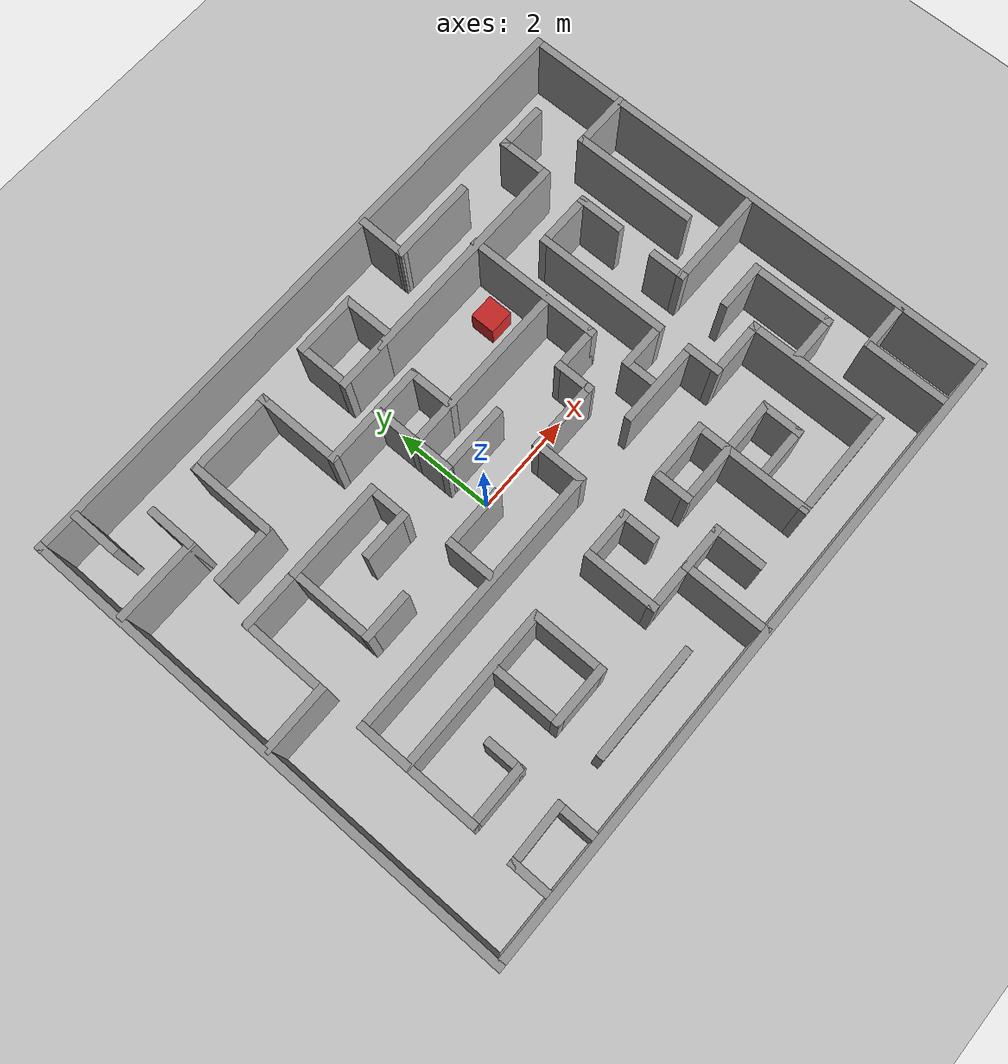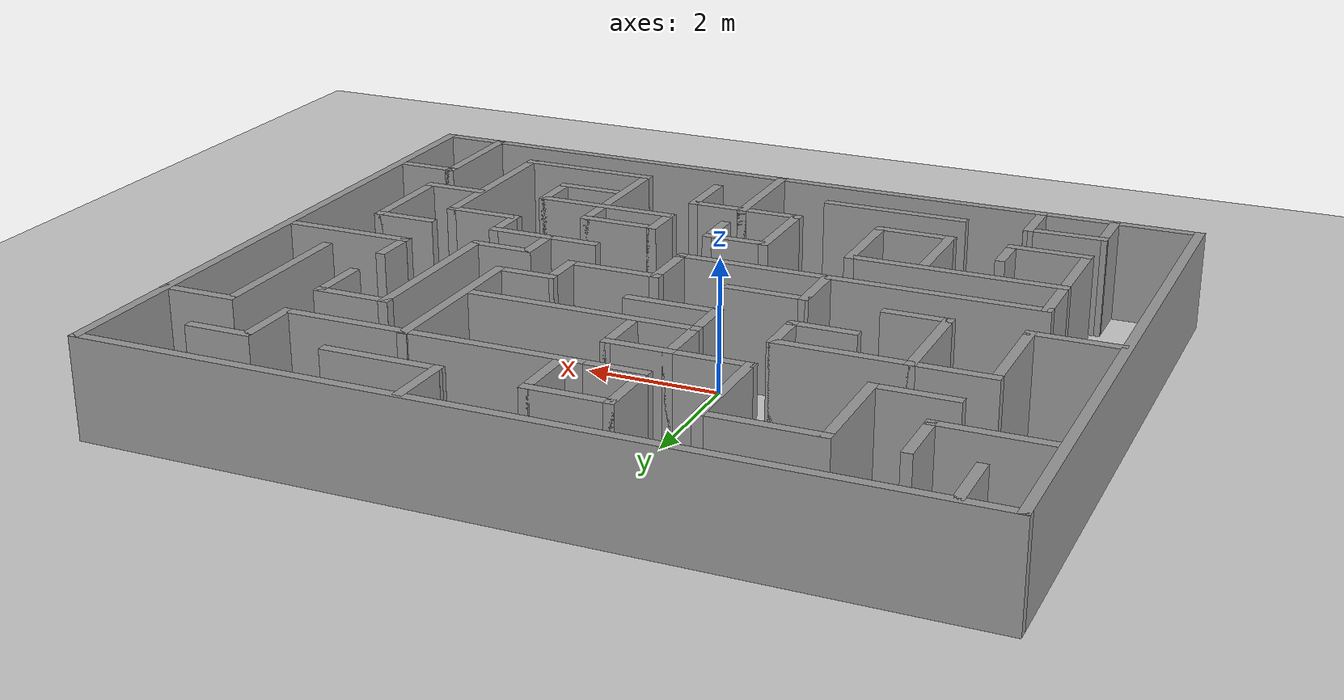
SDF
<sdf version="1.6">
 <world name="default">
  <light name="sun" type="directional">
   <pose>0 0 10 0 -0 0</pose>
   <diffuse>0.8 0.8 0.8 1</diffuse>
   <specular>0.1 0.1 0.1 1</specular>
   <attenuation>
    <range>1000</range>
    <constant>0.9</constant>
    <linear>0.01</linear>
    <quadratic>0.001</quadratic>
   </attenuation>
   <direction>-0.5 0.5 -1</direction>
  </light>
  <model name="ground_plane">
   <static>1</static>
   <link name="link">
    <collision name="collision">
     <geometry><plane><normal>0 0 1</normal><size>100 100</size></plane></geometry>
     <surface><friction><ode><mu>100</mu><mu2>50</mu2></ode></friction></surface>
    </collision>
    <visual name="visual">
     <cast_shadows>0</cast_shadows>
     <geometry><plane><normal>0 0 1</normal><size>100 100</size></plane></geometry>
     <material>
      <script><uri>file://media/materials/scripts/gazebo.material</uri><name>Gazebo/Grey</name></script>
     </material>
    </visual>
   </link>
  </model>
  <gravity>0 0 -9.8</gravity>
  <magnetic_field>6e-06 2.3e-05 -4.2e-05</magnetic_field>
  <atmosphere type="adiabatic"/>
  <physics name="default_physics" default="0" type="ode">
   <max_step_size>0.001</max_step_size>
   <real_time_factor>1</real_time_factor>
   <real_time_update_rate>1000</real_time_update_rate>
  </physics>
  <scene><ambient>0.4 0.4 0.4 1</ambient><background>0.7 0.7 0.7 1</background><shadows>1</shadows></scene>
  <spherical_coordinates>
   <surface_model>EARTH_WGS84</surface_model>
   <latitude_deg>0</latitude_deg>
   <longitude_deg>0</longitude_deg>
   <elevation>0</elevation>
   <heading_deg>0</heading_deg>
  </spherical_coordinates>
  <model name="lab">
   <pose>0.761191 -0.150374 0 0 -0 0</pose>
   <link name="Wall_101">
    <collision name="Wall_101_Collision">
     <geometry><box><size>2 0.15 1.5</size></box></geometry>
     <pose>0 0 0.75 0 -0 0</pose>
    </collision>
    <visual name="Wall_101_Visual">
     <pose>0 0 0.75 0 -0 0</pose>
     <geometry><box><size>2 0.15 1.5</size></box></geometry>
     <material>
      <script><uri>file://media/materials/scripts/gazebo.material</uri><name>Gazebo/Grey</name></script>
      <ambient>1 1 1 1</ambient>
     </material>
    </visual>
    <pose>5.219 -0.018 0 0 -0 0</pose>
   </link>
   <link name="Wall_104">
    <collision name="Wall_104_Collision">
     <geometry><box><size>0.757009 0.15 1.5</size></box></geometry>
     <pose>0 0 0.75 0 -0 0</pose>
    </collision>
    <visual name="Wall_104_Visual">
     <pose>0 0 0.75 0 -0 0</pose>
     <geometry><box><size>0.757009 0.15 1.5</size></box></geometry>
     <material>
      <script><uri>file://media/materials/scripts/gazebo.material</uri><name>Gazebo/Grey</name></script>
      <ambient>1 1 1 1</ambient>
     </material>
    </visual>
    <pose>4.294 0.2855 0 0 -0 1.5708</pose>
   </link>
   <link name="Wall_107">
    <collision name="Wall_107_Collision">
     <geometry><box><size>0.75 0.15 1.5</size></box></geometry>
     <pose>0 0 0.75 0 -0 0</pose>
    </collision>
    <visual name="Wall_107_Visual">
     <pose>0 0 0.75 0 -0 0</pose>
     <geometry><box><size>0.75 0.15 1.5</size></box></geometry>
     <material>
      <script><uri>file://media/materials/scripts/gazebo.material</uri><name>Gazebo/Grey</name></script>
      <ambient>1 1 1 1</ambient>
     </material>
    </visual>
    <pose>2.421 -0.617 0 0 -0 1.5708</pose>
   </link>
   <link name="Wall_108">
    <collision name="Wall_108_Collision">
     <geometry><box><size>1 0.15 1.5</size></box></geometry>
     <pose>0 0 0.75 0 -0 0</pose>
    </collision>
    <visual name="Wall_108_Visual">
     <pose>0 0 0.75 0 -0 0</pose>
     <geometry><box><size>1 0.15 1.5</size></box></geometry>
     <material>
      <script><uri>file://media/materials/scripts/gazebo.material</uri><name>Gazebo/Grey</name></script>
      <ambient>1 1 1 1</ambient>
     </material>
    </visual>
    <pose>2.846 -0.317 0 0 -0 0</pose>
   </link>
   <link name="Wall_109">
    <collision name="Wall_109_Collision">
     <geometry><box><size>2.69242 0.15 1.5</size></box></geometry>
     <pose>0 0 0.75 0 -0 0</pose>
    </collision>
    <visual name="Wall_109_Visual">
     <pose>0 0 0.75 0 -0 0</pose>
     <geometry><box><size>2.69242 0.15 1.5</size></box></geometry>
     <material>
      <script><uri>file://media/materials/scripts/gazebo.material</uri><name>Gazebo/Grey</name></script>
      <ambient>1 1 1 1</ambient>
     </material>
    </visual>
    <pose>3.271 0.954 0 0 -0 1.5708</pose>
   </link>
   <link name="Wall_11">
    <collision name="Wall_11_Collision">
     <geometry><box><size>9.98794 0.15 1.5</size></box></geometry>
     <pose>0 0 0.75 0 -0 0</pose>
    </collision>
    <visual name="Wall_11_Visual">
     <pose>0 0 0.75 0 -0 0</pose>
     <geometry><box><size>9.98794 0.15 1.5</size></box></geometry>
     <material>
      <script><uri>file://media/materials/scripts/gazebo.material</uri><name>Gazebo/Grey</name></script>
      <ambient>1 1 1 1</ambient>
     </material>
    </visual>
    <pose>-6.285 0 0 0 0 -1.5708</pose>
   </link>
   <link name="Wall_110">
    <collision name="Wall_110_Collision">
     <geometry><box><size>1.17283 0.15 1.5</size></box></geometry>
     <pose>0 0 0.75 0 -0 0</pose>
    </collision>
    <visual name="Wall_110_Visual">
     <pose>0 0 0.75 0 -0 0</pose>
     <geometry><box><size>1.17283 0.15 1.5</size></box></geometry>
     <material>
      <script><uri>file://media/materials/scripts/gazebo.material</uri><name>Gazebo/Grey</name></script>
      <ambient>1 1 1 1</ambient>
     </material>
    </visual>
    <pose>3.782 2.225 0 0 -0 0</pose>
   </link>
   <link name="Wall_111">
    <collision name="Wall_111_Collision">
     <geometry><box><size>0.959881 0.15 1.5</size></box></geometry>
     <pose>0 0 0.75 0 -0 0</pose>
    </collision>
    <visual name="Wall_111_Visual">
     <pose>0 0 0.75 0 -0 0</pose>
     <geometry><box><size>0.959881 0.15 1.5</size></box></geometry>
     <material>
      <script><uri>file://media/materials/scripts/gazebo.material</uri><name>Gazebo/Grey</name></script>
      <ambient>1 1 1 1</ambient>
     </material>
    </visual>
    <pose>4.293 1.82 0 0 0 -1.5708</pose>
   </link>
   <link name="Wall_113">
    <collision name="Wall_113_Collision">
     <geometry><box><size>2.5 0.15 1.5</size></box></geometry>
     <pose>0 0 0.75 0 -0 0</pose>
    </collision>
    <visual name="Wall_113_Visual">
     <pose>0 0 0.75 0 -0 0</pose>
     <geometry><box><size>2.5 0.15 1.5</size></box></geometry>
     <material>
      <script><uri>file://media/materials/scripts/gazebo.material</uri><name>Gazebo/Grey</name></script>
      <ambient>1 1 1 1</ambient>
     </material>
    </visual>
    <pose>5.235 1.811 0 0 -0 1.5708</pose>
   </link>
   <link name="Wall_114">
    <collision name="Wall_114_Collision">
     <geometry><box><size>1.2 0.15 1.5</size></box></geometry>
     <pose>0 0 0.75 0 -0 0</pose>
    </collision>
    <visual name="Wall_114_Visual">
     <pose>0 0 0.75 0 -0 0</pose>
     <geometry><box><size>1.2 0.15 1.5</size></box></geometry>
     <material>
      <script><uri>file://media/materials/scripts/gazebo.material</uri><name>Gazebo/Grey</name></script>
      <ambient>1 1 1 1</ambient>
     </material>
    </visual>
    <pose>5.76 2.986 0 0 -0 0</pose>
   </link>
   <link name="Wall_116">
    <collision name="Wall_116_Collision">
     <geometry><box><size>1.066 0.15 1.5</size></box></geometry>
     <pose>0 0 0.75 0 -0 0</pose>
    </collision>
    <visual name="Wall_116_Visual">
     <pose>0 0 0.75 0 -0 0</pose>
     <geometry><box><size>1.066 0.15 1.5</size></box></geometry>
     <material>
      <script><uri>file://media/materials/scripts/gazebo.material</uri><name>Gazebo/Grey</name></script>
      <ambient>1 1 1 1</ambient>
     </material>
    </visual>
    <pose>4.276 3.544 0 0 -0 1.5708</pose>
   </link>
   <link name="Wall_117">
    <collision name="Wall_117_Collision">
     <geometry><box><size>1 0.15 1.5</size></box></geometry>
     <pose>0 0 0.75 0 -0 0</pose>
    </collision>
    <visual name="Wall_117_Visual">
     <pose>0 0 0.75 0 -0 0</pose>
     <geometry><box><size>1 0.15 1.5</size></box></geometry>
     <material>
      <script><uri>file://media/materials/scripts/gazebo.material</uri><name>Gazebo/Grey</name></script>
      <ambient>1 1 1 1</ambient>
     </material>
    </visual>
    <pose>4.701 4.002 0 0 -0 0</pose>
   </link>
   <link name="Wall_12">
    <collision name="Wall_12_Collision">
     <geometry><box><size>12.715 0.15 1.5</size></box></geometry>
     <pose>0 0 0.75 0 -0 0</pose>
    </collision>
    <visual name="Wall_12_Visual">
     <pose>0 0 0.75 0 -0 0</pose>
     <geometry><box><size>12.715 0.15 1.5</size></box></geometry>
     <material>
      <script><uri>file://media/materials/scripts/gazebo.material</uri><name>Gazebo/Grey</name></script>
      <ambient>1 1 1 1</ambient>
     </material>
    </visual>
    <pose>-0.0025 -4.919 0 0 -0 0</pose>
   </link>
   <link name="Wall_120">
    <collision name="Wall_120_Collision">
     <geometry><box><size>4.5 0.15 1.5</size></box></geometry>
     <pose>0 0 0.75 0 -0 0</pose>
    </collision>
    <visual name="Wall_120_Visual">
     <pose>0 0 0.75 0 -0 0</pose>
     <geometry><box><size>4.5 0.15 1.5</size></box></geometry>
     <material>
      <script><uri>file://media/materials/scripts/gazebo.material</uri><name>Gazebo/Grey</name></script>
      <ambient>1 1 1 1</ambient>
     </material>
    </visual>
    <pose>2.101 3.086 0 0 -0 3.14159</pose>
   </link>
   <link name="Wall_122">
    <collision name="Wall_122_Collision">
     <geometry><box><size>1.76495 0.15 1.5</size></box></geometry>
     <pose>0 0 0.75 0 -0 0</pose>
    </collision>
    <visual name="Wall_122_Visual">
     <pose>0 0 0.75 0 -0 0</pose>
     <geometry><box><size>1.76495 0.15 1.5</size></box></geometry>
     <material>
      <script><uri>file://media/materials/scripts/gazebo.material</uri><name>Gazebo/Grey</name></script>
      <ambient>1 1 1 1</ambient>
     </material>
    </visual>
    <pose>2.2655 3.993 0 0 -0 3.14159</pose>
   </link>
   <link name="Wall_124">
    <collision name="Wall_124_Collision">
     <geometry><box><size>1.02389 0.15 1.5</size></box></geometry>
     <pose>0 0 0.75 0 -0 0</pose>
    </collision>
    <visual name="Wall_124_Visual">
     <pose>0 0 0.75 0 -0 0</pose>
     <geometry><box><size>1.02389 0.15 1.5</size></box></geometry>
     <material>
      <script><uri>file://media/materials/scripts/gazebo.material</uri><name>Gazebo/Grey</name></script>
      <ambient>1 1 1 1</ambient>
     </material>
    </visual>
    <pose>1.4655 4.4295 0 0 -0 1.55362</pose>
   </link>
   <link name="Wall_126">
    <collision name="Wall_126_Collision">
     <geometry><box><size>1 0.15 1.5</size></box></geometry>
     <pose>0 0 0.75 0 -0 0</pose>
    </collision>
    <visual name="Wall_126_Visual">
     <pose>0 0 0.75 0 -0 0</pose>
     <geometry><box><size>1 0.15 1.5</size></box></geometry>
     <material>
      <script><uri>file://media/materials/scripts/gazebo.material</uri><name>Gazebo/Grey</name></script>
      <ambient>1 1 1 1</ambient>
     </material>
    </visual>
    <pose>-1.895 -0.545 0 0 -0 1.5708</pose>
   </link>
   <link name="Wall_127">
    <collision name="Wall_127_Collision">
     <geometry><box><size>1.25 0.15 1.5</size></box></geometry>
     <pose>0 0 0.75 0 -0 0</pose>
    </collision>
    <visual name="Wall_127_Visual">
     <pose>0 0 0.75 0 -0 0</pose>
     <geometry><box><size>1.25 0.15 1.5</size></box></geometry>
     <material>
      <script><uri>file://media/materials/scripts/gazebo.material</uri><name>Gazebo/Grey</name></script>
      <ambient>1 1 1 1</ambient>
     </material>
    </visual>
    <pose>-1.345 -0.12 0 0 -0 0</pose>
   </link>
   <link name="Wall_129">
    <collision name="Wall_129_Collision">
     <geometry><box><size>0.968161 0.15 1.5</size></box></geometry>
     <pose>0 0 0.75 0 -0 0</pose>
    </collision>
    <visual name="Wall_129_Visual">
     <pose>0 0 0.75 0 -0 0</pose>
     <geometry><box><size>0.968161 0.15 1.5</size></box></geometry>
     <material>
      <script><uri>file://media/materials/scripts/gazebo.material</uri><name>Gazebo/Grey</name></script>
      <ambient>1 1 1 1</ambient>
     </material>
    </visual>
    <pose>2.041 0.511 0 0 -0 0</pose>
   </link>
   <link name="Wall_13">
    <collision name="Wall_13_Collision">
     <geometry><box><size>9.98794 0.15 1.5</size></box></geometry>
     <pose>0 0 0.75 0 -0 0</pose>
    </collision>
    <visual name="Wall_13_Visual">
     <pose>0 0 0.75 0 -0 0</pose>
     <geometry><box><size>9.98794 0.15 1.5</size></box></geometry>
     <material>
      <script><uri>file://media/materials/scripts/gazebo.material</uri><name>Gazebo/Grey</name></script>
      <ambient>1 1 1 1</ambient>
     </material>
    </visual>
    <pose>6.28 0 0 0 -0 1.5708</pose>
   </link>
   <link name="Wall_130">
    <collision name="Wall_130_Collision">
     <geometry><box><size>2.75 0.15 1.5</size></box></geometry>
     <pose>0 0 0.75 0 -0 0</pose>
    </collision>
    <visual name="Wall_130_Visual">
     <pose>0 0 0.75 0 -0 0</pose>
     <geometry><box><size>2.75 0.15 1.5</size></box></geometry>
     <material>
      <script><uri>file://media/materials/scripts/gazebo.material</uri><name>Gazebo/Grey</name></script>
      <ambient>1 1 1 1</ambient>
     </material>
    </visual>
    <pose>2.45 1.811 0 0 -0 1.5708</pose>
   </link>
   <link name="Wall_132">
    <collision name="Wall_132_Collision">
     <geometry><box><size>1 0.15 1.5</size></box></geometry>
     <pose>0 0 0.75 0 -0 0</pose>
    </collision>
    <visual name="Wall_132_Visual">
     <pose>0 0 0.75 0 -0 0</pose>
     <geometry><box><size>1 0.15 1.5</size></box></geometry>
     <material>
      <script><uri>file://media/materials/scripts/gazebo.material</uri><name>Gazebo/Grey</name></script>
      <ambient>1 1 1 1</ambient>
     </material>
    </visual>
    <pose>-3.486 -0.12 0 0 -0 3.14159</pose>
   </link>
   <link name="Wall_135">
    <collision name="Wall_135_Collision">
     <geometry><box><size>3.52703 0.15 1.5</size></box></geometry>
     <pose>0 0 0.75 0 -0 0</pose>
    </collision>
    <visual name="Wall_135_Visual">
     <pose>0 0 0.75 0 -0 0</pose>
     <geometry><box><size>3.52703 0.15 1.5</size></box></geometry>
     <material>
      <script><uri>file://media/materials/scripts/gazebo.material</uri><name>Gazebo/Grey</name></script>
      <ambient>1 1 1 1</ambient>
     </material>
    </visual>
    <pose>0.7135 1.48 0 0 -0 3.14159</pose>
   </link>
   <link name="Wall_137">
    <collision name="Wall_137_Collision">
     <geometry><box><size>1.75 0.15 1.5</size></box></geometry>
     <pose>0 0 0.75 0 -0 0</pose>
    </collision>
    <visual name="Wall_137_Visual">
     <pose>0 0 0.75 0 -0 0</pose>
     <geometry><box><size>1.75 0.15 1.5</size></box></geometry>
     <material>
      <script><uri>file://media/materials/scripts/gazebo.material</uri><name>Gazebo/Grey</name></script>
      <ambient>1 1 1 1</ambient>
     </material>
    </visual>
    <pose>-3.911 0.68 0 0 -0 1.5708</pose>
   </link>
   <link name="Wall_138">
    <collision name="Wall_138_Collision">
     <geometry><box><size>1.25 0.15 1.5</size></box></geometry>
     <pose>0 0 0.75 0 -0 0</pose>
    </collision>
    <visual name="Wall_138_Visual">
     <pose>0 0 0.75 0 -0 0</pose>
     <geometry><box><size>1.25 0.15 1.5</size></box></geometry>
     <material>
      <script><uri>file://media/materials/scripts/gazebo.material</uri><name>Gazebo/Grey</name></script>
      <ambient>1 1 1 1</ambient>
     </material>
    </visual>
    <pose>-4.461 1.48 0 0 -0 3.14159</pose>
   </link>
   <link name="Wall_139">
    <collision name="Wall_139_Collision">
     <geometry><box><size>1.75 0.15 1.5</size></box></geometry>
     <pose>0 0 0.75 0 -0 0</pose>
    </collision>
    <visual name="Wall_139_Visual">
     <pose>0 0 0.75 0 -0 0</pose>
     <geometry><box><size>1.75 0.15 1.5</size></box></geometry>
     <material>
      <script><uri>file://media/materials/scripts/gazebo.material</uri><name>Gazebo/Grey</name></script>
      <ambient>1 1 1 1</ambient>
     </material>
    </visual>
    <pose>-5.011 0.68 0 0 0 -1.5708</pose>
   </link>
   <link name="Wall_14">
    <collision name="Wall_14_Collision">
     <geometry><box><size>12.715 0.15 1.5</size></box></geometry>
     <pose>0 0 0.75 0 -0 0</pose>
    </collision>
    <visual name="Wall_14_Visual">
     <pose>0 0 0.75 0 -0 0</pose>
     <geometry><box><size>12.715 0.15 1.5</size></box></geometry>
     <material>
      <script><uri>file://media/materials/scripts/gazebo.material</uri><name>Gazebo/Grey</name></script>
      <ambient>1 1 1 1</ambient>
     </material>
    </visual>
    <pose>-0.0025 4.919 0 0 -0 3.14159</pose>
   </link>
   <link name="Wall_140">
    <collision name="Wall_140_Collision">
     <geometry><box><size>1.35 0.15 1.5</size></box></geometry>
     <pose>0 0 0.75 0 -0 0</pose>
    </collision>
    <visual name="Wall_140_Visual">
     <pose>0 0 0.75 0 -0 0</pose>
     <geometry><box><size>1.35 0.15 1.5</size></box></geometry>
     <material>
      <script><uri>file://media/materials/scripts/gazebo.material</uri><name>Gazebo/Grey</name></script>
      <ambient>1 1 1 1</ambient>
     </material>
    </visual>
    <pose>-5.611 -0.12 0 0 -0 3.14159</pose>
   </link>
   <link name="Wall_142">
    <collision name="Wall_142_Collision">
     <geometry><box><size>2 0.15 1.5</size></box></geometry>
     <pose>0 0 0.75 0 -0 0</pose>
    </collision>
    <visual name="Wall_142_Visual">
     <pose>0 0 0.75 0 -0 0</pose>
     <geometry><box><size>2 0.15 1.5</size></box></geometry>
     <material>
      <script><uri>file://media/materials/scripts/gazebo.material</uri><name>Gazebo/Grey</name></script>
      <ambient>1 1 1 1</ambient>
     </material>
    </visual>
    <pose>-2.986 1.48 0 0 -0 0</pose>
   </link>
   <link name="Wall_143">
    <collision name="Wall_143_Collision">
     <geometry><box><size>0.842 0.15 1.5</size></box></geometry>
     <pose>0 0 0.75 0 -0 0</pose>
    </collision>
    <visual name="Wall_143_Visual">
     <pose>0 0 0.75 0 -0 0</pose>
     <geometry><box><size>0.842 0.15 1.5</size></box></geometry>
     <material>
      <script><uri>file://media/materials/scripts/gazebo.material</uri><name>Gazebo/Grey</name></script>
      <ambient>1 1 1 1</ambient>
     </material>
    </visual>
    <pose>-2.061 1.134 0 0 0 -1.5708</pose>
   </link>
   <link name="Wall_144">
    <collision name="Wall_144_Collision">
     <geometry><box><size>1 0.15 1.5</size></box></geometry>
     <pose>0 0 0.75 0 -0 0</pose>
    </collision>
    <visual name="Wall_144_Visual">
     <pose>0 0 0.75 0 -0 0</pose>
     <geometry><box><size>1 0.15 1.5</size></box></geometry>
     <material>
      <script><uri>file://media/materials/scripts/gazebo.material</uri><name>Gazebo/Grey</name></script>
      <ambient>1 1 1 1</ambient>
     </material>
    </visual>
    <pose>-2.486 0.788 0 0 0 -3.14159</pose>
   </link>
   <link name="Wall_147">
    <collision name="Wall_147_Collision">
     <geometry><box><size>0.842 0.15 1.5</size></box></geometry>
     <pose>0 0 0.75 0 -0 0</pose>
    </collision>
    <visual name="Wall_147_Visual">
     <pose>0 0 0.75 0 -0 0</pose>
     <geometry><box><size>0.842 0.15 1.5</size></box></geometry>
     <material>
      <script><uri>file://media/materials/scripts/gazebo.material</uri><name>Gazebo/Grey</name></script>
      <ambient>1 1 1 1</ambient>
     </material>
    </visual>
    <pose>-0.975 1.134 0 0 0 -1.5708</pose>
   </link>
   <link name="Wall_149">
    <collision name="Wall_149_Collision">
     <geometry><box><size>1.42247 0.15 1.5</size></box></geometry>
     <pose>0 0 0.75 0 -0 0</pose>
    </collision>
    <visual name="Wall_149_Visual">
     <pose>0 0 0.75 0 -0 0</pose>
     <geometry><box><size>1.42247 0.15 1.5</size></box></geometry>
     <material>
      <script><uri>file://media/materials/scripts/gazebo.material</uri><name>Gazebo/Grey</name></script>
      <ambient>1 1 1 1</ambient>
     </material>
    </visual>
    <pose>-0.339 0.788 0 0 -0 0</pose>
   </link>
   <link name="Wall_151">
    <collision name="Wall_151_Collision">
     <geometry><box><size>1 0.15 1.5</size></box></geometry>
     <pose>0 0 0.75 0 -0 0</pose>
    </collision>
    <visual name="Wall_151_Visual">
     <pose>0 0 0.75 0 -0 0</pose>
     <geometry><box><size>1 0.15 1.5</size></box></geometry>
     <material>
      <script><uri>file://media/materials/scripts/gazebo.material</uri><name>Gazebo/Grey</name></script>
      <ambient>1 1 1 1</ambient>
     </material>
    </visual>
    <pose>-0.975 1.905 0 0 -0 1.5708</pose>
   </link>
   <link name="Wall_152">
    <collision name="Wall_152_Collision">
     <geometry><box><size>1.02307 0.15 1.5</size></box></geometry>
     <pose>0 0 0.75 0 -0 0</pose>
    </collision>
    <visual name="Wall_152_Visual">
     <pose>0 0 0.75 0 -0 0</pose>
     <geometry><box><size>1.02307 0.15 1.5</size></box></geometry>
     <material>
      <script><uri>file://media/materials/scripts/gazebo.material</uri><name>Gazebo/Grey</name></script>
      <ambient>1 1 1 1</ambient>
     </material>
    </visual>
    <pose>-0.5385 2.33 0 0 -0 0</pose>
   </link>
   <link name="Wall_153">
    <collision name="Wall_153_Collision">
     <geometry><box><size>1 0.15 1.5</size></box></geometry>
     <pose>0 0 0.75 0 -0 0</pose>
    </collision>
    <visual name="Wall_153_Visual">
     <pose>0 0 0.75 0 -0 0</pose>
     <geometry><box><size>1 0.15 1.5</size></box></geometry>
     <material>
      <script><uri>file://media/materials/scripts/gazebo.material</uri><name>Gazebo/Grey</name></script>
      <ambient>1 1 1 1</ambient>
     </material>
    </visual>
    <pose>-0.102 1.905 0 0 0 -1.5708</pose>
   </link>
   <link name="Wall_156">
    <collision name="Wall_156_Collision">
     <geometry><box><size>1.051 0.15 1.5</size></box></geometry>
     <pose>0 0 0.75 0 -0 0</pose>
    </collision>
    <visual name="Wall_156_Visual">
     <pose>0 0 0.75 0 -0 0</pose>
     <geometry><box><size>1.051 0.15 1.5</size></box></geometry>
     <material>
      <script><uri>file://media/materials/scripts/gazebo.material</uri><name>Gazebo/Grey</name></script>
      <ambient>1 1 1 1</ambient>
     </material>
    </visual>
    <pose>-0.5245 3.086 0 0 -0 3.14159</pose>
   </link>
   <link name="Wall_158">
    <collision name="Wall_158_Collision">
     <geometry><box><size>1.126 0.15 1.5</size></box></geometry>
     <pose>0 0 0.75 0 -0 0</pose>
    </collision>
    <visual name="Wall_158_Visual">
     <pose>0 0 0.75 0 -0 0</pose>
     <geometry><box><size>1.126 0.15 1.5</size></box></geometry>
     <material>
      <script><uri>file://media/materials/scripts/gazebo.material</uri><name>Gazebo/Grey</name></script>
      <ambient>1 1 1 1</ambient>
     </material>
    </visual>
    <pose>-0.975 3.574 0 0 -0 1.5708</pose>
   </link>
   <link name="Wall_159">
    <collision name="Wall_159_Collision">
     <geometry><box><size>1.30068 0.15 1.5</size></box></geometry>
     <pose>0 0 0.75 0 -0 0</pose>
    </collision>
    <visual name="Wall_159_Visual">
     <pose>0 0 0.75 0 -0 0</pose>
     <geometry><box><size>1.30068 0.15 1.5</size></box></geometry>
     <material>
      <script><uri>file://media/materials/scripts/gazebo.material</uri><name>Gazebo/Grey</name></script>
      <ambient>1 1 1 1</ambient>
     </material>
    </visual>
    <pose>-0.3995 4.062 0 0 -0 0</pose>
   </link>
   <link name="Wall_160">
    <collision name="Wall_160_Collision">
     <geometry><box><size>1 0.15 1.5</size></box></geometry>
     <pose>0 0 0.75 0 -0 0</pose>
    </collision>
    <visual name="Wall_160_Visual">
     <pose>0 0 0.75 0 -0 0</pose>
     <geometry><box><size>1 0.15 1.5</size></box></geometry>
     <material>
      <script><uri>file://media/materials/scripts/gazebo.material</uri><name>Gazebo/Grey</name></script>
      <ambient>1 1 1 1</ambient>
     </material>
    </visual>
    <pose>0.176 3.637 0 0 0 -1.5708</pose>
   </link>
   <link name="Wall_162">
    <collision name="Wall_162_Collision">
     <geometry><box><size>1.25 0.15 1.5</size></box></geometry>
     <pose>0 0 0.75 0 -0 0</pose>
    </collision>
    <visual name="Wall_162_Visual">
     <pose>0 0 0.75 0 -0 0</pose>
     <geometry><box><size>1.25 0.15 1.5</size></box></geometry>
     <material>
      <script><uri>file://media/materials/scripts/gazebo.material</uri><name>Gazebo/Grey</name></script>
      <ambient>1 1 1 1</ambient>
     </material>
    </visual>
    <pose>-1.525 2.33 0 0 -0 3.14159</pose>
   </link>
   <link name="Wall_163">
    <collision name="Wall_163_Collision">
     <geometry><box><size>1.75 0.15 1.5</size></box></geometry>
     <pose>0 0 0.75 0 -0 0</pose>
    </collision>
    <visual name="Wall_163_Visual">
     <pose>0 0 0.75 0 -0 0</pose>
     <geometry><box><size>1.75 0.15 1.5</size></box></geometry>
     <material>
      <script><uri>file://media/materials/scripts/gazebo.material</uri><name>Gazebo/Grey</name></script>
      <ambient>1 1 1 1</ambient>
     </material>
    </visual>
    <pose>-2.075 3.13 0 0 -0 1.5708</pose>
   </link>
   <link name="Wall_164">
    <collision name="Wall_164_Collision">
     <geometry><box><size>1.75293 0.15 1.5</size></box></geometry>
     <pose>0 0 0.75 0 -0 0</pose>
    </collision>
    <visual name="Wall_164_Visual">
     <pose>0 0 0.75 0 -0 0</pose>
     <geometry><box><size>1.75293 0.15 1.5</size></box></geometry>
     <material>
      <script><uri>file://media/materials/scripts/gazebo.material</uri><name>Gazebo/Grey</name></script>
      <ambient>1 1 1 1</ambient>
     </material>
    </visual>
    <pose>-2.8765 3.93 0 0 -0 3.14159</pose>
   </link>
   <link name="Wall_165">
    <collision name="Wall_165_Collision">
     <geometry><box><size>1.75 0.15 1.5</size></box></geometry>
     <pose>0 0 0.75 0 -0 0</pose>
    </collision>
    <visual name="Wall_165_Visual">
     <pose>0 0 0.75 0 -0 0</pose>
     <geometry><box><size>1.75 0.15 1.5</size></box></geometry>
     <material>
      <script><uri>file://media/materials/scripts/gazebo.material</uri><name>Gazebo/Grey</name></script>
      <ambient>1 1 1 1</ambient>
     </material>
    </visual>
    <pose>-3.678 3.13 0 0 0 -1.5708</pose>
   </link>
   <link name="Wall_166">
    <collision name="Wall_166_Collision">
     <geometry><box><size>1.247 0.15 1.5</size></box></geometry>
     <pose>0 0 0.75 0 -0 0</pose>
    </collision>
    <visual name="Wall_166_Visual">
     <pose>0 0 0.75 0 -0 0</pose>
     <geometry><box><size>1.247 0.15 1.5</size></box></geometry>
     <material>
      <script><uri>file://media/materials/scripts/gazebo.material</uri><name>Gazebo/Grey</name></script>
      <ambient>1 1 1 1</ambient>
     </material>
    </visual>
    <pose>-4.2265 2.33 0 0 -0 3.14159</pose>
   </link>
   <link name="Wall_168">
    <collision name="Wall_168_Collision">
     <geometry><box><size>1.6925 0.15 1.5</size></box></geometry>
     <pose>0 0 0.75 0 -0 0</pose>
    </collision>
    <visual name="Wall_168_Visual">
     <pose>0 0 0.75 0 -0 0</pose>
     <geometry><box><size>1.6925 0.15 1.5</size></box></geometry>
     <material>
      <script><uri>file://media/materials/scripts/gazebo.material</uri><name>Gazebo/Grey</name></script>
      <ambient>1 1 1 1</ambient>
     </material>
    </visual>
    <pose>-5.442 3.095 0 0 -0 0</pose>
   </link>
   <link name="Wall_169">
    <collision name="Wall_169_Collision">
     <geometry><box><size>1 0.15 1.5</size></box></geometry>
     <pose>0 0 0.75 0 -0 0</pose>
    </collision>
    <visual name="Wall_169_Visual">
     <pose>0 0 0.75 0 -0 0</pose>
     <geometry><box><size>1 0.15 1.5</size></box></geometry>
     <material>
      <script><uri>file://media/materials/scripts/gazebo.material</uri><name>Gazebo/Grey</name></script>
      <ambient>1 1 1 1</ambient>
     </material>
    </visual>
    <pose>-4.671 3.52 0 0 -0 1.5708</pose>
   </link>
   <link name="Wall_171">
    <collision name="Wall_171_Collision">
     <geometry><box><size>1 0.15 1.5</size></box></geometry>
     <pose>0 0 0.75 0 -0 0</pose>
    </collision>
    <visual name="Wall_171_Visual">
     <pose>0 0 0.75 0 -0 0</pose>
     <geometry><box><size>1 0.15 1.5</size></box></geometry>
     <material>
      <script><uri>file://media/materials/scripts/gazebo.material</uri><name>Gazebo/Grey</name></script>
      <ambient>1 1 1 1</ambient>
     </material>
    </visual>
    <pose>-5.538 4.426 0 0 0 -1.5708</pose>
   </link>
   <link name="Wall_32">
    <collision name="Wall_32_Collision">
     <geometry><box><size>0.870681 0.15 1.5</size></box></geometry>
     <pose>0 0 0.75 0 -0 0</pose>
    </collision>
    <visual name="Wall_32_Visual">
     <pose>0 0 0.75 0 -0 0</pose>
     <geometry><box><size>0.870681 0.15 1.5</size></box></geometry>
     <material>
      <script><uri>file://media/materials/scripts/gazebo.material</uri><name>Gazebo/Grey</name></script>
      <ambient>1 1 1 1</ambient>
     </material>
    </visual>
    <pose>-5.039 -4.498 0 0 -0 1.5708</pose>
   </link>
   <link name="Wall_33">
    <collision name="Wall_33_Collision">
     <geometry><box><size>1.25 0.15 1.5</size></box></geometry>
     <pose>0 0 0.75 0 -0 0</pose>
    </collision>
    <visual name="Wall_33_Visual">
     <pose>0 0 0.75 0 -0 0</pose>
     <geometry><box><size>1.25 0.15 1.5</size></box></geometry>
     <material>
      <script><uri>file://media/materials/scripts/gazebo.material</uri><name>Gazebo/Grey</name></script>
      <ambient>1 1 1 1</ambient>
     </material>
    </visual>
    <pose>-4.489 -4.1275 0 0 -0 0.019089</pose>
   </link>
   <link name="Wall_34">
    <collision name="Wall_34_Collision">
     <geometry><box><size>0.891216 0.15 1.5</size></box></geometry>
     <pose>0 0 0.75 0 -0 0</pose>
    </collision>
    <visual name="Wall_34_Visual">
     <pose>0 0 0.75 0 -0 0</pose>
     <geometry><box><size>0.891216 0.15 1.5</size></box></geometry>
     <material>
      <script><uri>file://media/materials/scripts/gazebo.material</uri><name>Gazebo/Grey</name></script>
      <ambient>1 1 1 1</ambient>
     </material>
    </visual>
    <pose>-3.939 -4.4875 0 0 0 -1.5708</pose>
   </link>
   <link name="Wall_36">
    <collision name="Wall_36_Collision">
     <geometry><box><size>2.25 0.15 1.5</size></box></geometry>
     <pose>0 0 0.75 0 -0 0</pose>
    </collision>
    <visual name="Wall_36_Visual">
     <pose>0 0 0.75 0 -0 0</pose>
     <geometry><box><size>2.25 0.15 1.5</size></box></geometry>
     <material>
      <script><uri>file://media/materials/scripts/gazebo.material</uri><name>Gazebo/Grey</name></script>
      <ambient>1 1 1 1</ambient>
     </material>
    </visual>
    <pose>-1.863 -4.137 0 0 -0 0</pose>
   </link>
   <link name="Wall_39">
    <collision name="Wall_39_Collision">
     <geometry><box><size>1.75 0.15 1.5</size></box></geometry>
     <pose>0 0 0.75 0 -0 0</pose>
    </collision>
    <visual name="Wall_39_Visual">
     <pose>0 0 0.75 0 -0 0</pose>
     <geometry><box><size>1.75 0.15 1.5</size></box></geometry>
     <material>
      <script><uri>file://media/materials/scripts/gazebo.material</uri><name>Gazebo/Grey</name></script>
      <ambient>1 1 1 1</ambient>
     </material>
    </visual>
    <pose>0.282 -4.083 0 0 -0 1.5708</pose>
   </link>
   <link name="Wall_40">
    <collision name="Wall_40_Collision">
     <geometry><box><size>0.952 0.15 1.5</size></box></geometry>
     <pose>0 0 0.75 0 -0 0</pose>
    </collision>
    <visual name="Wall_40_Visual">
     <pose>0 0 0.75 0 -0 0</pose>
     <geometry><box><size>0.952 0.15 1.5</size></box></geometry>
     <material>
      <script><uri>file://media/materials/scripts/gazebo.material</uri><name>Gazebo/Grey</name></script>
      <ambient>1 1 1 1</ambient>
     </material>
    </visual>
    <pose>0.683 -3.283 0 0 -0 0</pose>
   </link>
   <link name="Wall_41">
    <collision name="Wall_41_Collision">
     <geometry><box><size>1.02878 0.15 1.5</size></box></geometry>
     <pose>0 0 0.75 0 -0 0</pose>
    </collision>
    <visual name="Wall_41_Visual">
     <pose>0 0 0.75 0 -0 0</pose>
     <geometry><box><size>1.02878 0.15 1.5</size></box></geometry>
     <material>
      <script><uri>file://media/materials/scripts/gazebo.material</uri><name>Gazebo/Grey</name></script>
      <ambient>1 1 1 1</ambient>
     </material>
    </visual>
    <pose>1.084 -3.722 0 0 0 -1.5708</pose>
   </link>
   <link name="Wall_43">
    <collision name="Wall_43_Collision">
     <geometry><box><size>1.017 0.15 1.5</size></box></geometry>
     <pose>0 0 0.75 0 -0 0</pose>
    </collision>
    <visual name="Wall_43_Visual">
     <pose>0 0 0.75 0 -0 0</pose>
     <geometry><box><size>1.017 0.15 1.5</size></box></geometry>
     <material>
      <script><uri>file://media/materials/scripts/gazebo.material</uri><name>Gazebo/Grey</name></script>
      <ambient>1 1 1 1</ambient>
     </material>
    </visual>
    <pose>-0.1515 -3.283 0 0 -0 3.14159</pose>
   </link>
   <link name="Wall_44">
    <collision name="Wall_44_Collision">
     <geometry><box><size>1.465 0.15 1.5</size></box></geometry>
     <pose>0 0 0.75 0 -0 0</pose>
    </collision>
    <visual name="Wall_44_Visual">
     <pose>0 0 0.75 0 -0 0</pose>
     <geometry><box><size>1.465 0.15 1.5</size></box></geometry>
     <material>
      <script><uri>file://media/materials/scripts/gazebo.material</uri><name>Gazebo/Grey</name></script>
      <ambient>1 1 1 1</ambient>
     </material>
    </visual>
    <pose>-0.585 -2.6255 0 0 -0 1.5708</pose>
   </link>
   <link name="Wall_45">
    <collision name="Wall_45_Collision">
     <geometry><box><size>1.035 0.15 1.5</size></box></geometry>
     <pose>0 0 0.75 0 -0 0</pose>
    </collision>
    <visual name="Wall_45_Visual">
     <pose>0 0 0.75 0 -0 0</pose>
     <geometry><box><size>1.035 0.15 1.5</size></box></geometry>
     <material>
      <script><uri>file://media/materials/scripts/gazebo.material</uri><name>Gazebo/Grey</name></script>
      <ambient>1 1 1 1</ambient>
     </material>
    </visual>
    <pose>-0.1425 -1.968 0 0 -0 0</pose>
   </link>
   <link name="Wall_46">
    <collision name="Wall_46_Collision">
     <geometry><box><size>0.75 0.15 1.5</size></box></geometry>
     <pose>0 0 0.75 0 -0 0</pose>
    </collision>
    <visual name="Wall_46_Visual">
     <pose>0 0 0.75 0 -0 0</pose>
     <geometry><box><size>0.75 0.15 1.5</size></box></geometry>
     <material>
      <script><uri>file://media/materials/scripts/gazebo.material</uri><name>Gazebo/Grey</name></script>
      <ambient>1 1 1 1</ambient>
     </material>
    </visual>
    <pose>0.3 -2.268 0 0 0 -1.5708</pose>
   </link>
   <link name="Wall_48">
    <collision name="Wall_48_Collision">
     <geometry><box><size>1.219 0.15 1.5</size></box></geometry>
     <pose>0 0 0.75 0 -0 0</pose>
    </collision>
    <visual name="Wall_48_Visual">
     <pose>0 0 0.75 0 -0 0</pose>
     <geometry><box><size>1.219 0.15 1.5</size></box></geometry>
     <material>
      <script><uri>file://media/materials/scripts/gazebo.material</uri><name>Gazebo/Grey</name></script>
      <ambient>1 1 1 1</ambient>
     </material>
    </visual>
    <pose>-2.4455 -3.283 0 0 -0 0</pose>
   </link>
   <link name="Wall_49">
    <collision name="Wall_49_Collision">
     <geometry><box><size>1.49536 0.15 1.5</size></box></geometry>
     <pose>0 0 0.75 0 -0 0</pose>
    </collision>
    <visual name="Wall_49_Visual">
     <pose>0 0 0.75 0 -0 0</pose>
     <geometry><box><size>1.49536 0.15 1.5</size></box></geometry>
     <material>
      <script><uri>file://media/materials/scripts/gazebo.material</uri><name>Gazebo/Grey</name></script>
      <ambient>1 1 1 1</ambient>
     </material>
    </visual>
    <pose>-1.911 -2.6105 0 0 -0 1.5708</pose>
   </link>
   <link name="Wall_50">
    <collision name="Wall_50_Collision">
     <geometry><box><size>3.25 0.15 1.5</size></box></geometry>
     <pose>0 0 0.75 0 -0 0</pose>
    </collision>
    <visual name="Wall_50_Visual">
     <pose>0 0 0.75 0 -0 0</pose>
     <geometry><box><size>3.25 0.15 1.5</size></box></geometry>
     <material>
      <script><uri>file://media/materials/scripts/gazebo.material</uri><name>Gazebo/Grey</name></script>
      <ambient>1 1 1 1</ambient>
     </material>
    </visual>
    <pose>-3.461 -1.938 0 0 -0 3.14159</pose>
   </link>
   <link name="Wall_51">
    <collision name="Wall_51_Collision">
     <geometry><box><size>1.5 0.15 1.5</size></box></geometry>
     <pose>0 0 0.75 0 -0 0</pose>
    </collision>
    <visual name="Wall_51_Visual">
     <pose>0 0 0.75 0 -0 0</pose>
     <geometry><box><size>1.5 0.15 1.5</size></box></geometry>
     <material>
      <script><uri>file://media/materials/scripts/gazebo.material</uri><name>Gazebo/Grey</name></script>
      <ambient>1 1 1 1</ambient>
     </material>
    </visual>
    <pose>-5.011 -2.613 0 0 0 -1.5708</pose>
   </link>
   <link name="Wall_52">
    <collision name="Wall_52_Collision">
     <geometry><box><size>1.25 0.15 1.5</size></box></geometry>
     <pose>0 0 0.75 0 -0 0</pose>
    </collision>
    <visual name="Wall_52_Visual">
     <pose>0 0 0.75 0 -0 0</pose>
     <geometry><box><size>1.25 0.15 1.5</size></box></geometry>
     <material>
      <script><uri>file://media/materials/scripts/gazebo.material</uri><name>Gazebo/Grey</name></script>
      <ambient>1 1 1 1</ambient>
     </material>
    </visual>
    <pose>-4.461 -3.288 0 0 -0 0</pose>
   </link>
   <link name="Wall_53">
    <collision name="Wall_53_Collision">
     <geometry><box><size>0.75 0.15 1.5</size></box></geometry>
     <pose>0 0 0.75 0 -0 0</pose>
    </collision>
    <visual name="Wall_53_Visual">
     <pose>0 0 0.75 0 -0 0</pose>
     <geometry><box><size>0.75 0.15 1.5</size></box></geometry>
     <material>
      <script><uri>file://media/materials/scripts/gazebo.material</uri><name>Gazebo/Grey</name></script>
      <ambient>1 1 1 1</ambient>
     </material>
    </visual>
    <pose>-3.911 -2.988 0 0 -0 1.5708</pose>
   </link>
   <link name="Wall_55">
    <collision name="Wall_55_Collision">
     <geometry><box><size>1.46451 0.15 1.5</size></box></geometry>
     <pose>0 0 0.75 0 -0 0</pose>
    </collision>
    <visual name="Wall_55_Visual">
     <pose>0 0 0.75 0 -0 0</pose>
     <geometry><box><size>1.46451 0.15 1.5</size></box></geometry>
     <material>
      <script><uri>file://media/materials/scripts/gazebo.material</uri><name>Gazebo/Grey</name></script>
      <ambient>1 1 1 1</ambient>
     </material>
    </visual>
    <pose>-2.98 -2.626 0 0 -0 1.5708</pose>
   </link>
   <link name="Wall_57">
    <collision name="Wall_57_Collision">
     <geometry><box><size>1.06893 0.15 1.5</size></box></geometry>
     <pose>0 0 0.75 0 -0 0</pose>
    </collision>
    <visual name="Wall_57_Visual">
     <pose>0 0 0.75 0 -0 0</pose>
     <geometry><box><size>1.06893 0.15 1.5</size></box></geometry>
     <material>
      <script><uri>file://media/materials/scripts/gazebo.material</uri><name>Gazebo/Grey</name></script>
      <ambient>1 1 1 1</ambient>
     </material>
    </visual>
    <pose>-5.011 -1.4785 0 0 -0 1.5708</pose>
   </link>
   <link name="Wall_58">
    <collision name="Wall_58_Collision">
     <geometry><box><size>5.47163 0.15 1.5</size></box></geometry>
     <pose>0 0 0.75 0 -0 0</pose>
    </collision>
    <visual name="Wall_58_Visual">
     <pose>0 0 0.75 0 -0 0</pose>
     <geometry><box><size>5.47163 0.15 1.5</size></box></geometry>
     <material>
      <script><uri>file://media/materials/scripts/gazebo.material</uri><name>Gazebo/Grey</name></script>
      <ambient>1 1 1 1</ambient>
     </material>
    </visual>
    <pose>-2.3505 -1.019 0 0 -0 0</pose>
   </link>
   <link name="Wall_59">
    <collision name="Wall_59_Collision">
     <geometry><box><size>1.06037 0.15 1.5</size></box></geometry>
     <pose>0 0 0.75 0 -0 0</pose>
    </collision>
    <visual name="Wall_59_Visual">
     <pose>0 0 0.75 0 -0 0</pose>
     <geometry><box><size>1.06037 0.15 1.5</size></box></geometry>
     <material>
      <script><uri>file://media/materials/scripts/gazebo.material</uri><name>Gazebo/Grey</name></script>
      <ambient>1 1 1 1</ambient>
     </material>
    </visual>
    <pose>0.31 -0.564 0 0 -0 1.5708</pose>
   </link>
   <link name="Wall_60">
    <collision name="Wall_60_Collision">
     <geometry><box><size>1.4714 0.15 1.5</size></box></geometry>
     <pose>0 0 0.75 0 -0 0</pose>
    </collision>
    <visual name="Wall_60_Visual">
     <pose>0 0 0.75 0 -0 0</pose>
     <geometry><box><size>1.4714 0.15 1.5</size></box></geometry>
     <material>
      <script><uri>file://media/materials/scripts/gazebo.material</uri><name>Gazebo/Grey</name></script>
      <ambient>1 1 1 1</ambient>
     </material>
    </visual>
    <pose>0.9705 -0.109 0 0 -0 0</pose>
   </link>
   <link name="Wall_61">
    <collision name="Wall_61_Collision">
     <geometry><box><size>0.770001 0.15 1.5</size></box></geometry>
     <pose>0 0 0.75 0 -0 0</pose>
    </collision>
    <visual name="Wall_61_Visual">
     <pose>0 0 0.75 0 -0 0</pose>
     <geometry><box><size>0.770001 0.15 1.5</size></box></geometry>
     <material>
      <script><uri>file://media/materials/scripts/gazebo.material</uri><name>Gazebo/Grey</name></script>
      <ambient>1 1 1 1</ambient>
     </material>
    </visual>
    <pose>1.6315 0.201 0 0 -0 1.56918</pose>
   </link>
   <link name="Wall_78">
    <collision name="Wall_78_Collision">
     <geometry><box><size>0.75 0.15 1.5</size></box></geometry>
     <pose>0 0 0.75 0 -0 0</pose>
    </collision>
    <visual name="Wall_78_Visual">
     <pose>0 0 0.75 0 -0 0</pose>
     <geometry><box><size>0.75 0.15 1.5</size></box></geometry>
     <material>
      <script><uri>file://media/materials/scripts/gazebo.material</uri><name>Gazebo/Grey</name></script>
      <ambient>1 1 1 1</ambient>
     </material>
    </visual>
    <pose>1.195 -2.273 0 0 -0 1.5708</pose>
   </link>
   <link name="Wall_79">
    <collision name="Wall_79_Collision">
     <geometry><box><size>1.25 0.15 1.5</size></box></geometry>
     <pose>0 0 0.75 0 -0 0</pose>
    </collision>
    <visual name="Wall_79_Visual">
     <pose>0 0 0.75 0 -0 0</pose>
     <geometry><box><size>1.25 0.15 1.5</size></box></geometry>
     <material>
      <script><uri>file://media/materials/scripts/gazebo.material</uri><name>Gazebo/Grey</name></script>
      <ambient>1 1 1 1</ambient>
     </material>
    </visual>
    <pose>1.745 -1.973 0 0 -0 0</pose>
   </link>
   <link name="Wall_80">
    <collision name="Wall_80_Collision">
     <geometry><box><size>2.34 0.15 1.5</size></box></geometry>
     <pose>0 0 0.75 0 -0 0</pose>
    </collision>
    <visual name="Wall_80_Visual">
     <pose>0 0 0.75 0 -0 0</pose>
     <geometry><box><size>2.34 0.15 1.5</size></box></geometry>
     <material>
      <script><uri>file://media/materials/scripts/gazebo.material</uri><name>Gazebo/Grey</name></script>
      <ambient>1 1 1 1</ambient>
     </material>
    </visual>
    <pose>2.295 -3.068 0 0 0 -1.5708</pose>
   </link>
   <link name="Wall_82">
    <collision name="Wall_82_Collision">
     <geometry><box><size>2.25 0.15 1.5</size></box></geometry>
     <pose>0 0 0.75 0 -0 0</pose>
    </collision>
    <visual name="Wall_82_Visual">
     <pose>0 0 0.75 0 -0 0</pose>
     <geometry><box><size>2.25 0.15 1.5</size></box></geometry>
     <material>
      <script><uri>file://media/materials/scripts/gazebo.material</uri><name>Gazebo/Grey</name></script>
      <ambient>1 1 1 1</ambient>
     </material>
    </visual>
    <pose>2.245 -2.573 0 0 -0 0</pose>
   </link>
   <link name="Wall_83">
    <collision name="Wall_83_Collision">
     <geometry><box><size>0.85 0.15 1.5</size></box></geometry>
     <pose>0 0 0.75 0 -0 0</pose>
    </collision>
    <visual name="Wall_83_Visual">
     <pose>0 0 0.75 0 -0 0</pose>
     <geometry><box><size>0.85 0.15 1.5</size></box></geometry>
     <material>
      <script><uri>file://media/materials/scripts/gazebo.material</uri><name>Gazebo/Grey</name></script>
      <ambient>1 1 1 1</ambient>
     </material>
    </visual>
    <pose>3.295 -2.923 0 0 0 -1.5708</pose>
   </link>
   <link name="Wall_84">
    <collision name="Wall_84_Collision">
     <geometry><box><size>1 0.15 1.5</size></box></geometry>
     <pose>0 0 0.75 0 -0 0</pose>
    </collision>
    <visual name="Wall_84_Visual">
     <pose>0 0 0.75 0 -0 0</pose>
     <geometry><box><size>1 0.15 1.5</size></box></geometry>
     <material>
      <script><uri>file://media/materials/scripts/gazebo.material</uri><name>Gazebo/Grey</name></script>
      <ambient>1 1 1 1</ambient>
     </material>
    </visual>
    <pose>2.87 -3.273 0 0 -0 3.14159</pose>
   </link>
   <link name="Wall_86">
    <collision name="Wall_86_Collision">
     <geometry><box><size>2.19921 0.15 1.5</size></box></geometry>
     <pose>0 0 0.75 0 -0 0</pose>
    </collision>
    <visual name="Wall_86_Visual">
     <pose>0 0 0.75 0 -0 0</pose>
     <geometry><box><size>2.19921 0.15 1.5</size></box></geometry>
     <material>
      <script><uri>file://media/materials/scripts/gazebo.material</uri><name>Gazebo/Grey</name></script>
      <ambient>1 1 1 1</ambient>
     </material>
    </visual>
    <pose>3.3195 -4.163 0 0 -0 0</pose>
   </link>
   <link name="Wall_87">
    <collision name="Wall_87_Collision">
     <geometry><box><size>2.75 0.15 1.5</size></box></geometry>
     <pose>0 0 0.75 0 -0 0</pose>
    </collision>
    <visual name="Wall_87_Visual">
     <pose>0 0 0.75 0 -0 0</pose>
     <geometry><box><size>2.75 0.15 1.5</size></box></geometry>
     <material>
      <script><uri>file://media/materials/scripts/gazebo.material</uri><name>Gazebo/Grey</name></script>
      <ambient>1 1 1 1</ambient>
     </material>
    </visual>
    <pose>4.344 -2.863 0 0 -0 1.5708</pose>
   </link>
   <link name="Wall_89">
    <collision name="Wall_89_Collision">
     <geometry><box><size>1.19921 0.15 1.5</size></box></geometry>
     <pose>0 0 0.75 0 -0 0</pose>
    </collision>
    <visual name="Wall_89_Visual">
     <pose>0 0 0.75 0 -0 0</pose>
     <geometry><box><size>1.19921 0.15 1.5</size></box></geometry>
     <material>
      <script><uri>file://media/materials/scripts/gazebo.material</uri><name>Gazebo/Grey</name></script>
      <ambient>1 1 1 1</ambient>
     </material>
    </visual>
    <pose>3.8195 -1.563 0 0 -0 3.14159</pose>
   </link>
   <link name="Wall_90">
    <collision name="Wall_90_Collision">
     <geometry><box><size>0.75 0.15 1.5</size></box></geometry>
     <pose>0 0 0.75 0 -0 0</pose>
    </collision>
    <visual name="Wall_90_Visual">
     <pose>0 0 0.75 0 -0 0</pose>
     <geometry><box><size>0.75 0.15 1.5</size></box></geometry>
     <material>
      <script><uri>file://media/materials/scripts/gazebo.material</uri><name>Gazebo/Grey</name></script>
      <ambient>1 1 1 1</ambient>
     </material>
    </visual>
    <pose>3.295 -1.263 0 0 -0 1.5708</pose>
   </link>
   <link name="Wall_91">
    <collision name="Wall_91_Collision">
     <geometry><box><size>1.75 0.15 1.5</size></box></geometry>
     <pose>0 0 0.75 0 -0 0</pose>
    </collision>
    <visual name="Wall_91_Visual">
     <pose>0 0 0.75 0 -0 0</pose>
     <geometry><box><size>1.75 0.15 1.5</size></box></geometry>
     <material>
      <script><uri>file://media/materials/scripts/gazebo.material</uri><name>Gazebo/Grey</name></script>
      <ambient>1 1 1 1</ambient>
     </material>
    </visual>
    <pose>2.495 -0.963 0 0 -0 3.14159</pose>
   </link>
   <link name="Wall_93">
    <collision name="Wall_93_Collision">
     <geometry><box><size>1.768 0.15 1.5</size></box></geometry>
     <pose>0 0 0.75 0 -0 0</pose>
    </collision>
    <visual name="Wall_93_Visual">
     <pose>0 0 0.75 0 -0 0</pose>
     <geometry><box><size>1.768 0.15 1.5</size></box></geometry>
     <material>
      <script><uri>file://media/materials/scripts/gazebo.material</uri><name>Gazebo/Grey</name></script>
      <ambient>1 1 1 1</ambient>
     </material>
    </visual>
    <pose>5.34 -4.07 0 0 -0 1.5708</pose>
   </link>
   <link name="Wall_94">
    <collision name="Wall_94_Collision">
     <geometry><box><size>1 0.15 1.5</size></box></geometry>
     <pose>0 0 0.75 0 -0 0</pose>
    </collision>
    <visual name="Wall_94_Visual">
     <pose>0 0 0.75 0 -0 0</pose>
     <geometry><box><size>1 0.15 1.5</size></box></geometry>
     <material>
      <script><uri>file://media/materials/scripts/gazebo.material</uri><name>Gazebo/Grey</name></script>
      <ambient>1 1 1 1</ambient>
     </material>
    </visual>
    <pose>5.765 -3.261 0 0 -0 0</pose>
   </link>
   <link name="Wall_97">
    <collision name="Wall_97_Collision">
     <geometry><box><size>1 0.15 1.5</size></box></geometry>
     <pose>0 0 0.75 0 -0 0</pose>
    </collision>
    <visual name="Wall_97_Visual">
     <pose>0 0 0.75 0 -0 0</pose>
     <geometry><box><size>1 0.15 1.5</size></box></geometry>
     <material>
      <script><uri>file://media/materials/scripts/gazebo.material</uri><name>Gazebo/Grey</name></script>
      <ambient>1 1 1 1</ambient>
     </material>
    </visual>
    <pose>4.81 -2.456 0 0 -0 0</pose>
   </link>
   <link name="Wall_98">
    <collision name="Wall_98_Collision">
     <geometry><box><size>1.688 0.15 1.5</size></box></geometry>
     <pose>0 0 0.75 0 -0 0</pose>
    </collision>
    <visual name="Wall_98_Visual">
     <pose>0 0 0.75 0 -0 0</pose>
     <geometry><box><size>1.688 0.15 1.5</size></box></geometry>
     <material>
      <script><uri>file://media/materials/scripts/gazebo.material</uri><name>Gazebo/Grey</name></script>
      <ambient>1 1 1 1</ambient>
     </material>
    </visual>
    <pose>5.235 -1.687 0 0 -0 1.5708</pose>
   </link>
   <link name="Wall_99">
    <collision name="Wall_99_Collision">
     <geometry><box><size>1 0.15 1.5</size></box></geometry>
     <pose>0 0 0.75 0 -0 0</pose>
    </collision>
    <visual name="Wall_99_Visual">
     <pose>0 0 0.75 0 -0 0</pose>
     <geometry><box><size>1 0.15 1.5</size></box></geometry>
     <material>
      <script><uri>file://media/materials/scripts/gazebo.material</uri><name>Gazebo/Grey</name></script>
      <ambient>1 1 1 1</ambient>
     </material>
    </visual>
    <pose>4.81 -0.918 0 0 -0 3.14159</pose>
   </link>
   <static>1</static>
  </model>
  <model name="unit_box_0_2">
   <link name="link_0">
    <inertial>
     <mass>1</mass>
     <inertia>
      <ixx>0.166667</ixx>
      <ixy>0</ixy>
      <ixz>0</ixz>
      <iyy>0.166667</iyy>
      <iyz>0</iyz>
      <izz>0.166667</izz>
     </inertia>
    </inertial>
    <visual name="visual">
     <geometry><box><size>0.5 0.5 0.5</size></box></geometry>
     <material>
      <lighting>1</lighting>
      <script><uri>file://media/materials/scripts/gazebo.material</uri><name>Gazebo/Red</name></script>
      <ambient>1 0 0 1</ambient>
      <diffuse>1 0 0 1</diffuse>
      <specular>1 0 0 1</specular>
      <emissive>0 0 0 1</emissive>
      <shader type="vertex"><normal_map>__default__</normal_map></shader>
     </material>
    </visual>
    <collision name="collision">
     <geometry><box><size>0.5 0.5 0.5</size></box></geometry>
     <surface>
      <friction>
       <ode><mu>1</mu><mu2>1</mu2><fdir1>0 0 0</fdir1><slip1>0</slip1><slip2>0</slip2></ode>
       <torsional>
        <coefficient>1</coefficient>
        <patch_radius>0</patch_radius>
        <surface_radius>0</surface_radius>
        <use_patch_radius>1</use_patch_radius>
        <ode><slip>0</slip></ode>
       </torsional>
      </friction>
      <bounce><restitution_coefficient>0</restitution_coefficient><threshold>1e+06</threshold></bounce>
      <contact>
       <collide_without_contact>0</collide_without_contact>
       <collide_without_contact_bitmask>1</collide_without_contact_bitmask>
       <collide_bitmask>1</collide_bitmask>
       <ode>
        <soft_cfm>0</soft_cfm>
        <soft_erp>0.2</soft_erp>
        <kp>1e+13</kp>
        <kd>1</kd>
        <max_vel>0.01</max_vel>
        <min_depth>0</min_depth>
       </ode>
       <bullet>
        <split_impulse>1</split_impulse>
        <split_impulse_penetration_threshold>-0.01</split_impulse_penetration_threshold>
        <soft_cfm>0</soft_cfm>
        <soft_erp>0.2</soft_erp>
        <kp>1e+13</kp>
        <kd>1</kd>
       </bullet>
      </contact>
     </surface>
    </collision>
   </link>
   <static>0</static>
   <pose>2.66769 2.17797 0.255491 0 -0 0</pose>
  </model>
 </world>
</sdf>
